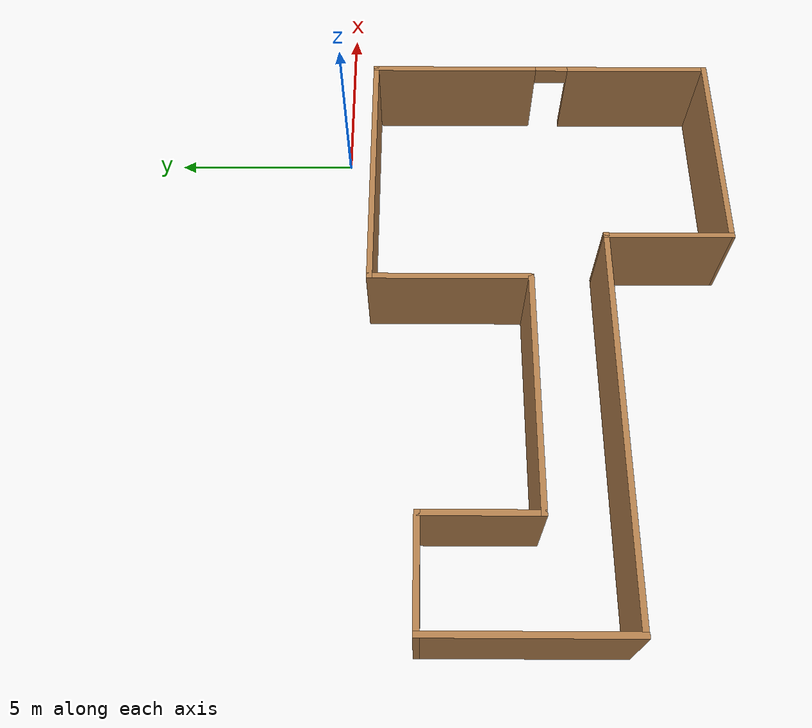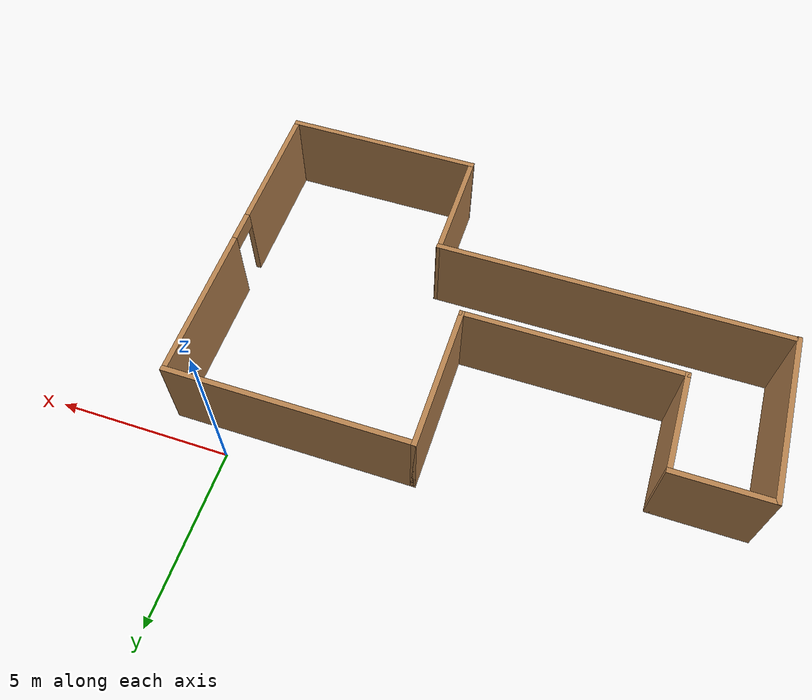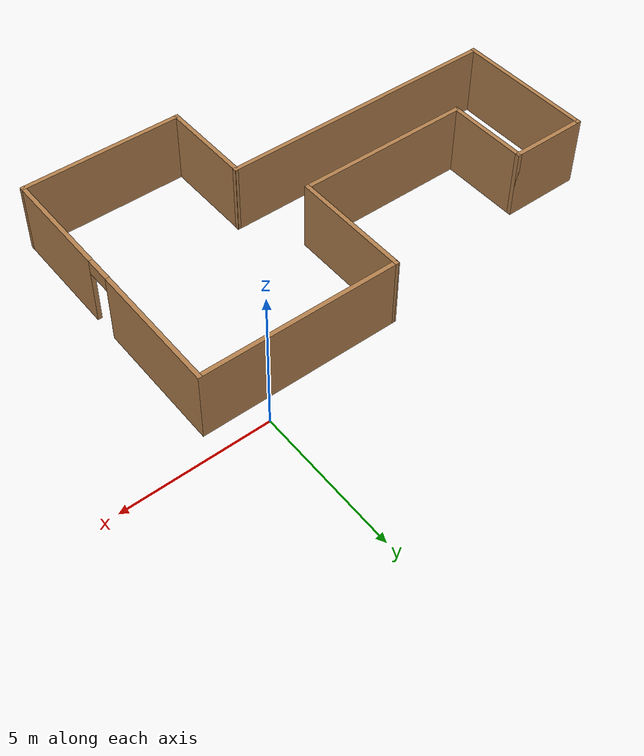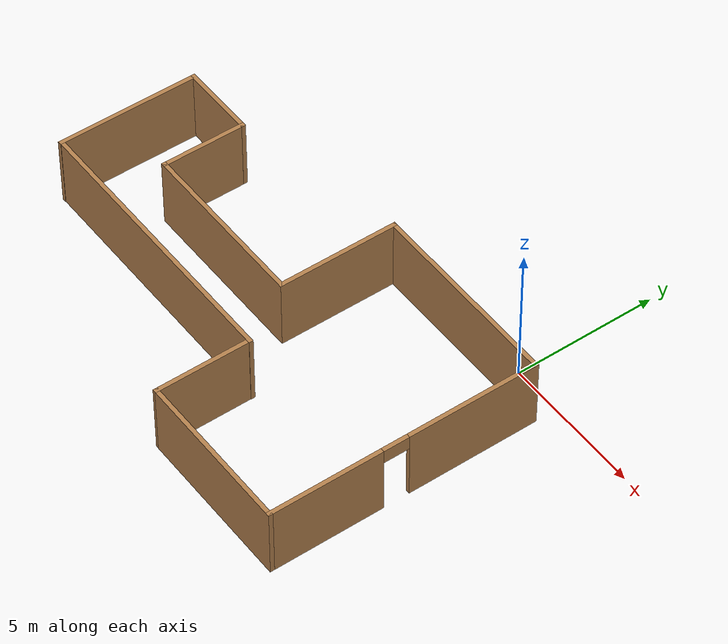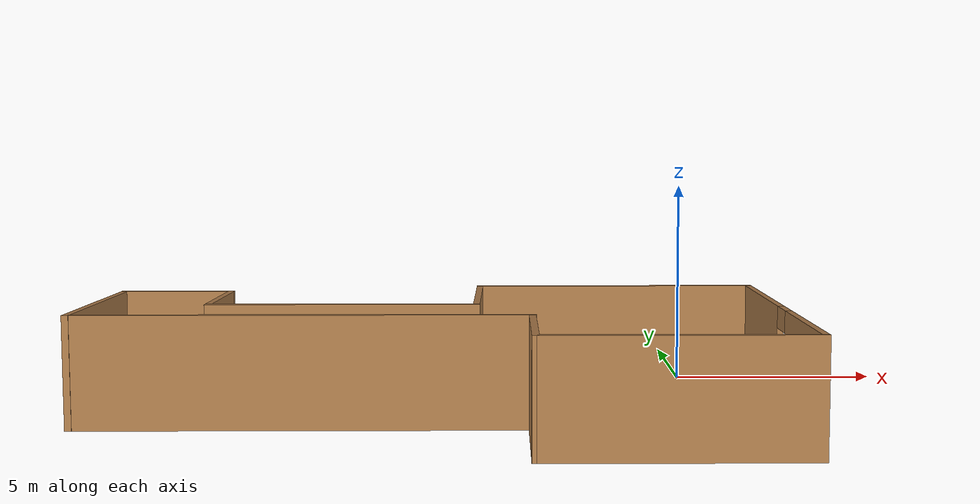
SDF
<?xml version='1.0'?>
<sdf version='1.7'>
  <model name='building'>
    <pose>-6.08512 -5.11265 0 0 -0 0</pose>
    <link name='Wall_0'>
      <collision name='Wall_0_Collision'>
        <geometry>
          <box>
            <size>5 0.15 2.5</size>
          </box>
        </geometry>
        <pose>0 0 1.25 0 -0 0</pose>
      </collision>
      <visual name='Wall_0_Visual'>
        <pose>0 0 1.25 0 -0 0</pose>
        <geometry>
          <box>
            <size>5 0.15 2.5</size>
          </box>
        </geometry>
        <material>
          <script>
            <uri>file://media/materials/scripts/gazebo.material</uri>
            <name>Gazebo/Wood</name>
          </script>
          <ambient>1 1 1 1</ambient>
        </material>
        <meta>
          <layer>0</layer>
        </meta>
      </visual>
      <pose>-7.78488 0.627645 0 0 -0 1.5708</pose>
    </link>
    <link name='Wall_1'>
      <collision name='Wall_1_Collision'>
        <geometry>
          <box>
            <size>2.77048 0.15 2.5</size>
          </box>
        </geometry>
        <pose>0 0 1.25 0 -0 0</pose>
      </collision>
      <visual name='Wall_1_Visual'>
        <pose>0 0 1.25 0 -0 0</pose>
        <geometry>
          <box>
            <size>2.77048 0.15 2.5</size>
          </box>
        </geometry>
        <material>
          <script>
            <uri>file://media/materials/scripts/gazebo.material</uri>
            <name>Gazebo/Wood</name>
          </script>
          <ambient>1 1 1 1</ambient>
        </material>
        <meta>
          <layer>0</layer>
        </meta>
      </visual>
      <pose>-6.47488 3.06265 0 0 -0 0</pose>
    </link>
    <link name='Wall_2'>
      <collision name='Wall_2_Collision'>
        <geometry>
          <box>
            <size>3 0.15 2.5</size>
          </box>
        </geometry>
        <pose>0 0 1.25 0 -0 0</pose>
      </collision>
      <visual name='Wall_2_Visual'>
        <pose>0 0 1.25 0 -0 0</pose>
        <geometry>
          <box>
            <size>3 0.15 2.5</size>
          </box>
        </geometry>
        <material>
          <script>
            <uri>file://media/materials/scripts/gazebo.material</uri>
            <name>Gazebo/Wood</name>
          </script>
          <ambient>1 1 1 1</ambient>
        </material>
        <meta>
          <layer>0</layer>
        </meta>
      </visual>
      <pose>-5.16488 1.63765 0 0 -0 -1.5708</pose>
    </link>
    <link name='Wall_3'>
      <collision name='Wall_3_Collision'>
        <geometry>
          <box>
            <size>6.25 0.15 2.5</size>
          </box>
        </geometry>
        <pose>0 0 1.25 0 -0 0</pose>
      </collision>
      <visual name='Wall_3_Visual'>
        <pose>0 0 1.25 0 -0 0</pose>
        <geometry>
          <box>
            <size>6.25 0.15 2.5</size>
          </box>
        </geometry>
        <material>
          <script>
            <uri>file://media/materials/scripts/gazebo.material</uri>
            <name>Gazebo/Wood</name>
          </script>
          <ambient>1 1 1 1</ambient>
        </material>
        <meta>
          <layer>0</layer>
        </meta>
      </visual>
      <pose>-2.11488 0.212646 0 0 -0 0</pose>
    </link>
    <link name='Wall_4'>
      <collision name='Wall_4_Collision'>
        <geometry>
          <box>
            <size>4.25 0.15 2.5</size>
          </box>
        </geometry>
        <pose>0 0 1.25 0 -0 0</pose>
      </collision>
      <visual name='Wall_4_Visual'>
        <pose>0 0 1.25 0 -0 0</pose>
        <geometry>
          <box>
            <size>4.25 0.15 2.5</size>
          </box>
        </geometry>
        <material>
          <script>
            <uri>file://media/materials/scripts/gazebo.material</uri>
            <name>Gazebo/Wood</name>
          </script>
          <ambient>1 1 1 1</ambient>
        </material>
        <meta>
          <layer>0</layer>
        </meta>
      </visual>
      <pose>0.935119 2.26265 0 0 -0 1.5708</pose>
    </link>
    <link name='Wall_5'>
      <collision name='Wall_5_Collision'>
        <geometry>
          <box>
            <size>7 0.15 2.5</size>
          </box>
        </geometry>
        <pose>0 0 1.25 0 -0 0</pose>
      </collision>
      <visual name='Wall_5_Visual'>
        <pose>0 0 1.25 0 -0 0</pose>
        <geometry>
          <box>
            <size>7 0.15 2.5</size>
          </box>
        </geometry>
        <material>
          <script>
            <uri>file://media/materials/scripts/gazebo.material</uri>
            <name>Gazebo/Wood</name>
          </script>
          <ambient>1 1 1 1</ambient>
        </material>
        <meta>
          <layer>0</layer>
        </meta>
      </visual>
      <pose>4.36012 4.31265 0 0 -0 0</pose>
    </link>
    <link name='Wall_6'>
      <pose>7.78512 -0.362354 0 0 -0 -1.5708</pose>
      <visual name='Wall_6_Visual_0'>
        <pose>-2.4375 0 1.25 0 -0 0</pose>
        <geometry>
          <box>
            <size>4.625 0.15 2.5</size>
          </box>
        </geometry>
        <material>
          <script>
            <uri>file://media/materials/scripts/gazebo.material</uri>
            <name>Gazebo/Wood</name>
          </script>
          <ambient>0.760784 0.662745 0.627451 1</ambient>
        </material>
        <meta>
          <layer>0</layer>
        </meta>
      </visual>
      <collision name='Wall_6_Collision_0'>
        <geometry>
          <box>
            <size>4.625 0.15 2.5</size>
          </box>
        </geometry>
        <pose>-2.4375 0 1.25 0 -0 0</pose>
      </collision>
      <visual name='Wall_6_Visual_1'>
        <pose>2.7625 0 1.25 0 -0 0</pose>
        <geometry>
          <box>
            <size>3.975 0.15 2.5</size>
          </box>
        </geometry>
        <material>
          <script>
            <uri>file://media/materials/scripts/gazebo.material</uri>
            <name>Gazebo/Wood</name>
          </script>
          <ambient>0.760784 0.662745 0.627451 1</ambient>
        </material>
        <meta>
          <layer>0</layer>
        </meta>
      </visual>
      <collision name='Wall_6_Collision_1'>
        <geometry>
          <box>
            <size>3.975 0.15 2.5</size>
          </box>
        </geometry>
        <pose>2.7625 0 1.25 0 -0 0</pose>
      </collision>
      <visual name='Wall_6_Visual_2'>
        <pose>0.325 0 2.25 0 -0 0</pose>
        <geometry>
          <box>
            <size>0.9 0.15 0.5</size>
          </box>
        </geometry>
        <material>
          <script>
            <uri>file://media/materials/scripts/gazebo.material</uri>
            <name>Gazebo/Wood</name>
          </script>
          <ambient>0.760784 0.662745 0.627451 1</ambient>
        </material>
        <meta>
          <layer>0</layer>
        </meta>
      </visual>
      <collision name='Wall_6_Collision_2'>
        <geometry>
          <box>
            <size>0.9 0.15 0.5</size>
          </box>
        </geometry>
        <pose>0.325 0 2.25 0 -0 0</pose>
      </collision>
    </link>
    <link name='Wall_7'>
      <collision name='Wall_7_Collision'>
        <geometry>
          <box>
            <size>5.75 0.15 2.5</size>
          </box>
        </geometry>
        <pose>0 0 1.25 0 -0 0</pose>
      </collision>
      <visual name='Wall_7_Visual'>
        <pose>0 0 1.25 0 -0 0</pose>
        <geometry>
          <box>
            <size>5.75 0.15 2.5</size>
          </box>
        </geometry>
        <material>
          <script>
            <uri>file://media/materials/scripts/gazebo.material</uri>
            <name>Gazebo/Wood</name>
          </script>
          <ambient>1 1 1 1</ambient>
        </material>
        <meta>
          <layer>0</layer>
        </meta>
      </visual>
      <pose>4.98512 -5.03735 0 0 -0 3.14159</pose>
    </link>
    <link name='Wall_8'>
      <collision name='Wall_8_Collision'>
        <geometry>
          <box>
            <size>3.40014 0.15 2.5</size>
          </box>
        </geometry>
        <pose>0 0 1.25 0 -0 0</pose>
      </collision>
      <visual name='Wall_8_Visual'>
        <pose>0 0 1.25 0 -0 0</pose>
        <geometry>
          <box>
            <size>3.40014 0.15 2.5</size>
          </box>
        </geometry>
        <material>
          <script>
            <uri>file://media/materials/scripts/gazebo.material</uri>
            <name>Gazebo/Wood</name>
          </script>
          <ambient>1 1 1 1</ambient>
        </material>
        <meta>
          <layer>0</layer>
        </meta>
      </visual>
      <pose>2.18012 -3.41235 0 0 -0 1.57387</pose>
    </link>
    <link name='Wall_9'>
      <collision name='Wall_9_Collision'>
        <geometry>
          <box>
            <size>10 0.15 2.5</size>
          </box>
        </geometry>
        <pose>0 0 1.25 0 -0 0</pose>
      </collision>
      <visual name='Wall_9_Visual'>
        <pose>0 0 1.25 0 -0 0</pose>
        <geometry>
          <box>
            <size>10 0.15 2.5</size>
          </box>
        </geometry>
        <material>
          <script>
            <uri>file://media/materials/scripts/gazebo.material</uri>
            <name>Gazebo/Wood</name>
          </script>
          <ambient>1 1 1 1</ambient>
        </material>
        <meta>
          <layer>0</layer>
        </meta>
      </visual>
      <pose>-2.73988 -1.78735 0 0 -0 3.14159</pose>
    </link>
    <static>1</static>
  </model>
</sdf>
